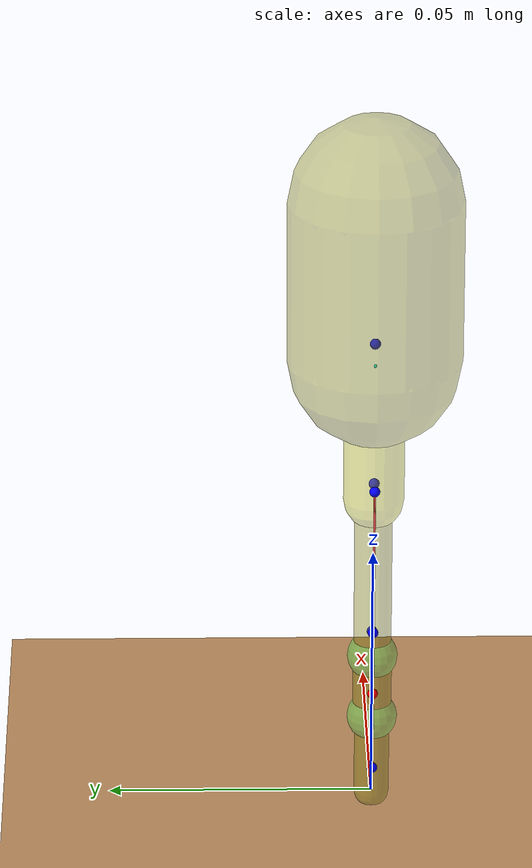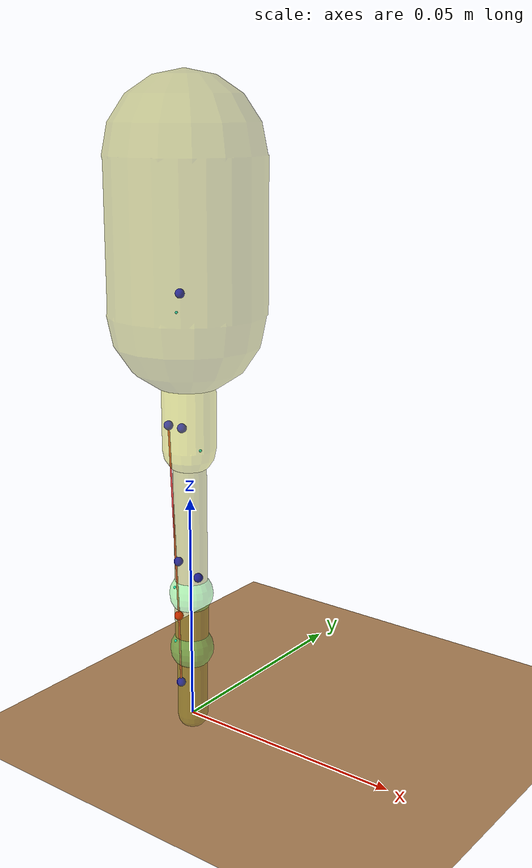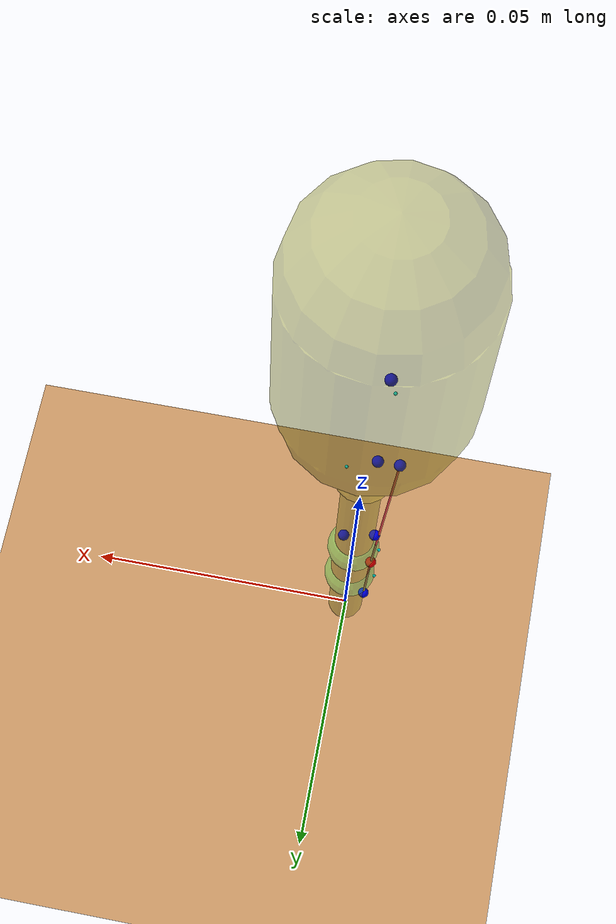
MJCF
<mujoco model="3SegRMdevel">
	<compiler coordinate="local" angle="radian" inertiafromgeom="false" inertiagrouprange="0 10"/>
	<option timestep="0.001" integrator="RK4" collision="predefined">

	</option>
	<size nkey="1" />

	<default>
        <geom rgba=".8 .6 .4 0.5" solimp=".99 .99 0"/>
        <joint limited="true" range="-1.57 0"/><!-- relative to reference pose-->
	</default>

	<asset>
		<texture type="skybox" builtin="gradient" rgb1="1 1 1" rgb2=".6 .8 1" width="256" height="256"/>
		<texture name="texplane" type="2d" builtin="checker" rgb1=".2 .3 .4" rgb2=".1 0.15 0.2"
            width="100" height="100"/>
		<material name='MatPlane' reflectance='0.5' texture="texplane" texrepeat="1 1" texuniform="true"/>

	</asset>
<!-- cumulative lengths 0.01, 0.0180277, 0.0384948, 0.056286, 0.0760299 -->
	<worldbody><!-- BODY 0 -->
		<light pos="0 1 1" dir="0 -1 -1" diffuse="1 1 1"/>
		<geom name='floor' pos='0 0 -0.002' size='1 1 0.125' type='plane' material="MatPlane"/><!-- make the floor the same distance as the foot sphere radius -->
		<body name="m_tar" mocap="true" pos="0 0 0"><!-- BODY 1 -->
			<geom type="sphere" size="0.003" rgba="1 0 0 0"/><!-- made transparent for now -->
		</body>
		<body name="s_pft" pos="0 0 0"><!-- Foot --><!-- BODY 2 -->
			<inertial pos="0 0. 0" mass="0.000657" diaginertia="1.568330E-8 1.568330E-8 3.596370E-9" />
			<geom name="geom_pft" type="capsule" fromto="0 0 0 0 0 0.015920" size="3.307757E-3" rgba="0.5 0.5 0 .4"/>
			<joint name="j_pft" type="free" pos="0 0 0" stiffness="0" damping="0" limited="false"/>
			<site name="t_ank_dst" pos="-0.003308 0 0.006368" size="0.001" rgba="0 0 1 1"/>
			<body name="s_tar" pos="0 0 0.015920"><!-- Tarsals --><!-- BODY 3 -->
				<inertial pos="0 0. 0" mass="0.000628" diaginertia="1.066980E-8 1.066980E-8 4.250790E-9" /><!-- mass + moi of foot combined with tarsus-->
				<geom name="geom_tar" type="capsule" fromto="0 0 0 0 0 0.012780" size="3.680106E-3" rgba="0.5 0.5 0 .4"/>
				<joint name="j_tmt" type="hinge" axis="0 1 0" pos="0 0 0" solreflimit="0.002 1" solimplimit="0.9 0.9 0.001"/>
				<geom name="jointSphere_tmt" type="sphere" pos="0 0 0" size="0.004776" rgba=".3 .9 .3 .4"/><!-- seems to be necessary for ground contact -->
				<site name="t_tmt_side" pos="-0.004776 0 0" size="0.0003" rgba="0 1 1 1"/>
				<site name="t_ank_via" pos="-0.003680 0 0.006368" size="0.001" rgba="1 0 0 1"/>
				<body name="s_tib" pos="0 0 0.012780"><!-- Tibfib --><!-- BODY 4 -->
					<inertial pos="0 0 0" mass="0.001459" diaginertia="1.336720E-7 1.336720E-7 9.199900E-9"/>
					<geom name="geom_sha" type="capsule" fromto="0 0 0 0 0 0.032584" size="3.551467E-3" rgba="0.5 0.5 0 .4"/>
					<joint name="j_ank" type="hinge" axis="0 1 0" pos="0 0 0"/>
					<site name="t_ank_prx" pos="-0.003551 0 0.006368" size="0.001" rgba="0 0 1 1"/>
					<site name="t_kne_dst" pos="0.002 0 0.004" size="0.001" rgba="0 0 1 1"/>
					<geom name="jointSphere_ank" type="sphere" pos="0 0 0" size="0.004776" rgba=".3 .9 .3 .4"/>
					<site name="t_ank_side" pos="-0.004776 0 0" size="0.0003" rgba="0 1 1 1"/>
					<body name="s_fem" pos="0 0 0.032584"><!-- Femur --><!-- BODY 5 -->
						<inertial pos="0 0 0" mass="0.003132" diaginertia="2.348770E-7 2.348770E-7 5.100900E-8"/>
						<geom name="geom_thg" type="capsule" fromto="0 0 0 0 0 0.028324" size="5.707481E-3" rgba="0.7 0.7 0 .4"/>
						<joint name="j_kne" type="hinge" axis="0 1 0" pos="0 0 0"/>
						<site name="t_kne_prx" pos="-0.005707 0 0.004" size="0.001" rgba="0 0 1 1"/>
						<site name="t_hip_dst" pos="-0.002 0 0.004" size="0.001" rgba="0 0 1 1"/>
						<geom name="jointSphere_kne" type="sphere" pos="0 0 0" size="0.004776" rgba="0 0 1 .5"/>
						<site name="t_kne_side" pos="0.003 0 0" size="0.0003" rgba="0 1 1 1"/>
						<body name="s_com" pos="0 0 0.028324"><!-- BODY 6 for COM applying force -->
							<inertial pos="0 0 0" mass="0.000000000001"/>
							<geom type="sphere" pos="0 0 0" size="0.003" rgba="1 0 0 .4"/>
						</body>
						<body name="s_bod" pos="0 0 0.028324"><!-- BODY 7 -->
							<inertial pos="0 0. 0" mass="0.029053" diaginertia="4.335560E-6 4.335560E-6 3.887000E-6"/>
							<geom name="geom_bod" type="capsule" fromto="0 0 0 0 0 0.031433" size="1.635798E-2" rgba="0.5 0.5 0 .4"/><!-- fromto="0 0. 0.046286  0 0. 0.0660299 -->
							<site name="t_hip_prx" pos="-0.002 0 0.004" size="0.001" rgba="0 0 1 1"/>
							<geom name="jointSphere_hip" type="sphere" pos="0 0. 0" size="0.004776" rgba=".3 .9 .3 .4"/>
							<site name="t_hip_side" pos="-0.003 0 0" size="0.0003" rgba="0 1 1 1"/>
							<joint name="j_hip" type="hinge" axis="0 1 0" pos="0 0 0"/>
							<geom name="snoutSphere" type="sphere" pos="0 0 0.031433" size="0.003" rgba="0 0 1 0.4"/>
						</body>
					</body>
				</body>
			</body>
		</body>
	</worldbody>
	<contact>
		<pair geom1="floor" geom2="geom_pft"  friction="1 1 0.005 0.0001 0.0001"/>
		<pair geom1="floor" geom2="jointSphere_hip"/>
		<pair geom1="floor" geom2="jointSphere_kne"/>
		<pair geom1="floor" geom2="jointSphere_ank"/>
		<pair geom1="floor" geom2="jointSphere_tmt"/>
	</contact>
	<equality>
	</equality>
	<tendon>
		<spatial width="0.0002" rgba=".95 .3 .3 1" limited="false" name="tend_ank" stiffness="0">
			<site site="t_kne_prx"/>
			<geom geom="jointSphere_ank" sidesite="t_ank_side"/>
			<site site="t_ank_via"/>
			<geom geom="jointSphere_tmt" sidesite="t_tmt_side"/>
			<site site="t_ank_dst"/>
		</spatial>
	</tendon>
	<actuator>

		<!--  ================= Torque actuators ================= /-->
		<motor tendon='tend_ank' name='a_tend_ank'/>
		<position kp="0.1" joint="j_kne" gear="1" ctrlrange="0 3.14" ctrllimited="false"/>
		<position kp="0.1" joint="j_hip" gear="1" ctrlrange="-3.14 0" ctrllimited="false"/>
	</actuator>
	<sensor>
	</sensor>

	<keyframe>

	</keyframe>
</mujoco>
